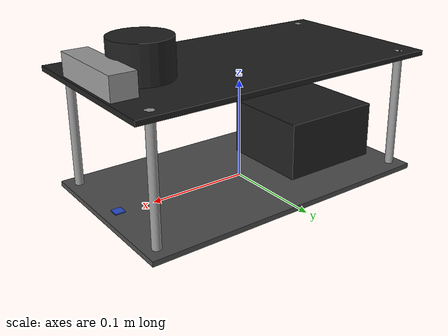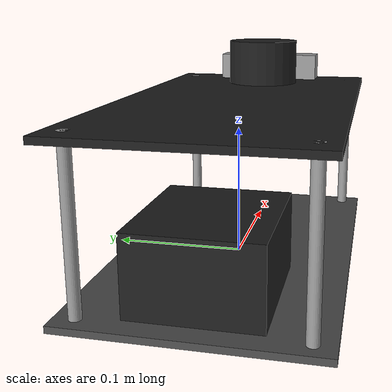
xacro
<?xml version="1.0" ?>
<robot xmlns:xacro="http://www.ros.org/wiki/xacro">
    <link name="slam_pack_mount_point">
      <visual>
        <origin xyz="0 0 0" rpy="0 0 0" />
        <geometry>
          <box size="0.305 0.178 0.005"/>
        </geometry>
        <material name="dark_grey" />
      </visual>
    </link>

  <joint name="bottom_plate_link_joint" type="fixed">
    <parent link="slam_pack_mount_point"/>
    <child link="bottom_plate_link"/>
    <origin xyz="0 0 0" rpy="0 0 0"/>
  </joint>
  <link name="bottom_plate_link"/>

  <joint name="xavier_link_joint" type="fixed">
    <parent link="bottom_plate_link"/>
    <child link="xavier_link"/>
    <origin xyz="-0.0832 0 0.0275" rpy="0 0 0"/>
  </joint>
  <link name="xavier_link">
    <visual>
      <origin xyz="0 0 0" rpy="0 0 0"/>
      <geometry>
        <box size="0.105 0.092 0.065"/>
      </geometry>
      <material name="light_black"/>
    </visual>
    <inertial>
      <origin xyz="0 0 0" />
      <mass value="0.64" />
      <inertia ixx="8.634e-4"
               ixy="0.0" iyy="7.905e-4"
               ixz="0.0" iyz="0.0" izz="1.387e-3" />
    </inertial>
  </link>

  <joint name="top_plate_link_joint" type="fixed">
    <parent link="bottom_plate_link"/>
    <child link="top_plate_link"/>
    <origin xyz="0 0 0.12" rpy="0 0 0"/>
  </joint>
  <link name="top_plate_link">
    <visual>
      <origin xyz="0 0 0" rpy="0 0 0"/>
      <geometry>
        <box size="0.32 0.175 0.005"/>
      </geometry>
      <material name="black"/>
    </visual>
    <inertial>
      <origin xyz="0 0 0" />
      <mass value="0.65" />
      <inertia ixx="3.496e-3"
               ixy="0.0" iyy="7.864e-3"
               ixz="0.0" iyz="0.0" izz="1.136e-2" />
    </inertial>
  </link>

  <link name="camera_link">
    <visual>
      <origin xyz="0 0 0" rpy="0 0 0"/>
      <geometry>
        <box size="0.025 0.089 0.025"/>
      </geometry>
      <material name="grey"/>
    </visual>
  </link>

  <joint name="camera_link_joint" type="fixed">
    <parent link="top_plate_link"/>
    <child link="camera_link"/>
    <origin xyz="0.145 0 0.0125" rpy="0 0 0"/>
  </joint>

  <link name="depth_image_link"/>

  <joint name="depth_image_link_joint" type="fixed">
    <parent link="camera_link"/>
    <child link="depth_image_link"/>
    <origin xyz="0 0 0" rpy="-${pi /2} 0 -${pi /2}"/>
  </joint>

  <gazebo reference="camera_link">
    <sensor name="gazebo_realsense_435" type="depth">
      <update_rate>20.0</update_rate>
      <camera name="camera">
        <horizontal_fov>1.6</horizontal_fov>
        <image>
          <width>480</width>
          <height>240</height>
        </image>
        <clip>
          <near>0.02</near>
          <far>10</far>
        </clip>
        <noise>
          <type>gaussian</type>
          <mean>0.0</mean>
          <stddev>0.007</stddev>
        </noise>
      </camera>
      <plugin name="gazebo_realsense_435_controller" filename="libgazebo_ros_openni_kinect.so">
        <cameraName>camera</cameraName>
        <alwayson>true</alwayson>
        <updaterate>0.0</updaterate>
        <frameName>depth_image_link</frameName>
        <cameraInfoTopicName>/camera/aligned_depth_to_color/camera_info</cameraInfoTopicName>
        <depthImageTopicName>/camera/aligned_depth_to_color/image_raw</depthImageTopicName>
        <imageTopicName>/camera/color/image_raw</imageTopicName>
        <pointCloudCutoffMax>8.0</pointCloudCutoffMax>
      </plugin>
    </sensor>
  </gazebo>

  <link name="lidar_link">
    <visual>
      <origin xyz="0 0 0" rpy="0 0 0"/>
      <geometry>
        <cylinder length="0.04" radius="0.03"/>
      </geometry>
      <material name="light_black"/>
    </visual>
    <inertial>
      <origin xyz="0 0 0" />
      <mass value="0.220" />
      <inertia ixx="1.214e-4"
               ixy="0.0" iyy="1.214e-4"
               ixz="0.0" iyz="0.0" izz="1.597e-4" />
    </inertial>
  </link>

  <joint name="lidar_link_joint" type="fixed">
    <parent link="top_plate_link"/>
    <child link="lidar_link"/>
    <origin xyz="0.105 0 0.02" rpy="0 0 0"/>
  </joint>

  <gazebo reference="lidar_link">
    <sensor name="gazebo_lidar" type="ray">
      <update_rate>20.0</update_rate>
      <plugin name="gazebo_lidar" filename="libgazebo_ros_laser.so">
        <topicName>scan</topicName>
        <namespace></namespace>
        <outputType>sensor_msgs/LaserScan</outputType>
        <frameName>lidar_link</frameName>
      </plugin>
      <ray>
        <scan>
          <horizontal>
            <samples>500</samples>
            <resolution>1</resolution>
            <min_angle>-3.1</min_angle>
            <max_angle>3.1</max_angle>
          </horizontal>
        </scan>
        <range>
          <min>0.120</min>
          <max>20</max>
          <resolution>0.015</resolution>
        </range>
        <noise>
          <type>gaussian</type>
          <mean>0.0</mean>
          <stddev>0.01</stddev>
        </noise>
      </ray>
    </sensor>
    <material>Gazebo/DarkGrey</material>
  </gazebo>

  <link name="imu_link">
    <visual>
      <origin xyz="0 0 0" rpy="0 0 0"/>
      <geometry>
        <box size="0.01 0.01 0.002"/>
      </geometry>
      <material name="blue"/>
    </visual>
    <inertial>
      <origin xyz="0 0 0" />
      <mass value="0.04" />
      <inertia ixx="3.467e-7"
               ixy="0.0" iyy="3.467e-7"
               ixz="0.0" iyz="0.0" izz="6.667e-7" />
    </inertial>
  </link>

  <joint name="imu_link_joint" type="fixed">
    <parent link="bottom_plate_link"/>
    <child link="imu_link"/>
    <origin xyz="0.1365 0 0.0026" rpy="0 0 0"/>
  </joint>

  <gazebo reference="imu_link">
    <sensor name="gazebo_imu" type="imu">
      <plugin name="gazebo_imu" filename="libgazebo_ros_imu_sensor.so">
        <updateRateHZ>30.0</updateRateHZ>
        <topicName>/imu</topicName>
        <frameName>imu_link</frameName>
      </plugin>
    </sensor>
    <material>Gazebo/Blue</material>
  </gazebo>

  <joint name="standoff_fl_joint" type="fixed">
    <parent link="bottom_plate_link"/>
    <child link="standoff_fl_link"/>
    <origin xyz="0.14 -0.074 0.0025" rpy="0 0 0"/>
  </joint>

  <link name="standoff_fl_link">
    <visual>
      <origin xyz="0 0 0.06" rpy="0 0 0"/>
      <geometry>
        <cylinder length="0.12" radius="0.0043"/>
      </geometry>
      <material name="grey"/>
    </visual>
  </link>

  <joint name="standoff_fr_link_joint" type="fixed">
    <parent link="bottom_plate_link"/>
    <child link="standoff_fr_link"/>
    <origin xyz="0.14 0.074 0.0025" rpy="0 0 0"/>
  </joint>

  <link name="standoff_fr_link">
    <visual>
      <origin xyz="0 0 0.06" rpy="0 0 0"/>
      <geometry>
        <cylinder length="0.12" radius="0.0043"/>
      </geometry>
      <material name="grey"/>
    </visual>
  </link>

  <joint name="standoff_bl_link_joint" type="fixed">
    <parent link="bottom_plate_link"/>
    <child link="standoff_bl_link"/>
    <origin xyz="-0.14 -0.074 0.0025" rpy="0 0 0"/>
  </joint>

  <link name="standoff_bl_link">
    <visual>
      <origin xyz="0 0 0.06" rpy="0 0 0"/>
      <geometry>
        <cylinder length="0.12" radius="0.0043"/>
      </geometry>
      <material name="grey"/>
    </visual>
  </link>

  <joint name="standoff_br_link_joint" type="fixed">
    <parent link="bottom_plate_link"/>
    <child link="standoff_br_link"/>
    <origin xyz="-0.14 0.074 0.0025" rpy="0 0 0"/>
  </joint>

  <link name="standoff_br_link">
    <visual>
      <origin xyz="0 0 0.06" rpy="0 0 0"/>
      <geometry>
        <cylinder length="0.12" radius="0.0043"/>
      </geometry>
      <material name="grey"/>
    </visual>
  </link>

    <!--                         Realsense-like camera                               -->

  <!--   Camera1 physics    -->
    <link name="camera_link1">
    <visual>
      <origin xyz="0 0 0" rpy="0 0 0"/>
      <geometry>
    <box size="0.01 0.01 0.01"/>
      </geometry>
      <material name="red"/>
    </visual>
  </link>

  <joint name="camera_joint1" type="fixed">
    <axis xyz="0 1 0" />
    <origin xyz="0.145 -0.02 0.0125" rpy="0 0 0"/>
    <parent link="top_plate_link"/>
    <child link="camera_link1"/>
  </joint>

  <!-- Camera1 plugin -->
  <gazebo reference="camera_link1">
    <sensor type="camera" name="camera/infra1">
      <update_rate>30.0</update_rate>
      <camera name="head">
        <horizontal_fov>1.3962634</horizontal_fov>
        <image>
          <width>720</width>
          <height>360</height>
          <format>L8</format>
        </image>
        <clip>
          <near>0.02</near>
          <far>300</far>
        </clip>
        <noise>
          <type>gaussian</type>
          <!-- Noise is sampled independently per pixel on each frame.
               That pixel's noise value is added to each of its color
               channels, which at that point lie in the range [0,1]. -->
          <mean>0.0</mean>
          <stddev>0.007</stddev>
        </noise>
      </camera>
      <plugin name="camera_controller" filename="libgazebo_ros_camera.so">
        <alwaysOn>true</alwaysOn>
        <updateRate>0.0</updateRate>
        <cameraName>camera/infra1</cameraName>
        <imageTopicName>/camera/infra1/image_rect_raw</imageTopicName>
        <cameraInfoTopicName>/camera/infra1/camera_info</cameraInfoTopicName>
        <frameName>camera_link1</frameName>
        <hackBaseline>0.07</hackBaseline>
        <distortionK1>0.0</distortionK1>
        <distortionK2>0.0</distortionK2>
        <distortionK3>0.0</distortionK3>
        <distortionT1>0.0</distortionT1>
        <distortionT2>0.0</distortionT2>
      </plugin>
    </sensor>
  </gazebo>

  <!--   Camera1 physics    -->
    <link name="camera_link2">
    <visual>
      <origin xyz="0 0 0" rpy="0 0 0"/>
      <geometry>
    <box size="0.01 0.01 0.01"/>
      </geometry>
      <material name="red"/>
    </visual>
  </link>

  <joint name="camera_joint2" type="fixed">
    <axis xyz="0 1 0" />
    <origin xyz="0.145 0.02 0.0125" rpy="0 0 0"/>
    <parent link="top_plate_link"/>
    <child link="camera_link2"/>
  </joint>

  <!-- Camera1 plugin -->
  <gazebo reference="camera_link2">
    <sensor type="camera" name="camera/infra2">
      <update_rate>30.0</update_rate>
      <camera name="head">
        <horizontal_fov>1.3962634</horizontal_fov>
        <image>
          <width>720</width>
          <height>360</height>
          <format>L8</format>
        </image>
        <clip>
          <near>0.02</near>
          <far>300</far>
        </clip>
        <noise>
          <type>gaussian</type>
          <!-- Noise is sampled independently per pixel on each frame.
               That pixel's noise value is added to each of its color
               channels, which at that point lie in the range [0,1]. -->
          <mean>0.0</mean>
          <stddev>0.007</stddev>
        </noise>
      </camera>
      <plugin name="camera_controller" filename="libgazebo_ros_camera.so">
        <alwaysOn>true</alwaysOn>
        <updateRate>0.0</updateRate>
        <cameraName>camera/infra2</cameraName>
        <imageTopicName>/camera/infra2/image_rect_raw</imageTopicName>
        <cameraInfoTopicName>/camera/infra2/camera_info</cameraInfoTopicName>
        <frameName>camera_link2</frameName>
        <hackBaseline>0.07</hackBaseline>
        <distortionK1>0.0</distortionK1>
        <distortionK2>0.0</distortionK2>
        <distortionK3>0.0</distortionK3>
        <distortionT1>0.0</distortionT1>
        <distortionT2>0.0</distortionT2>
      </plugin>
    </sensor>
  </gazebo>

</robot>
